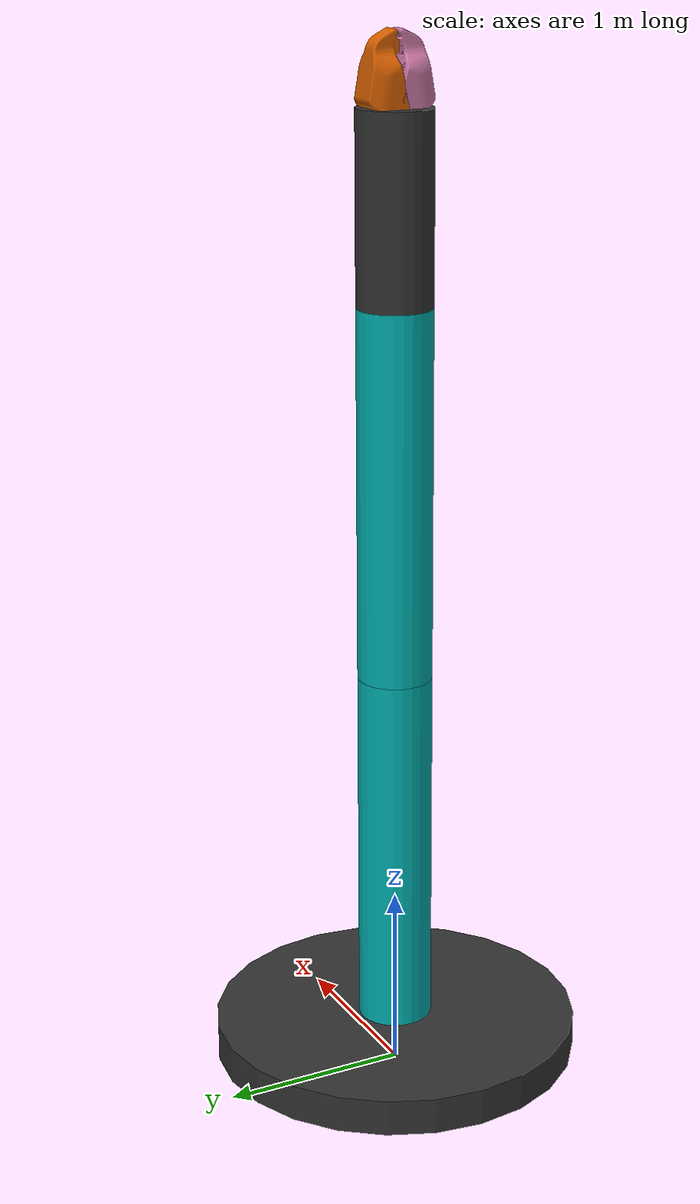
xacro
<?xml version="1.0"?>
<robot name="arm">

  <material name="dark_gray">
    <color rgba="0.2 0.2 0.2 1.0"/>
  </material>

  <material name="blue">
    <color rgba="0.0 0.7 0.7 1.0"/>
  </material>

  <link name="base_link">
    <visual>
      <geometry>
        <cylinder length="0.2" radius="0.5"/>
      </geometry>
      <material name="dark_gray"/>
    </visual>
  </link>

  <link name="bottom_arm">
    <visual>
      <geometry>
        <cylinder length="2.0" radius="0.2"/>
      </geometry>
      <material name="blue"/>
      <origin xyz="0 0 1.0"/>
    </visual>
  </link>

  <link name="bottom_rotator">
    <visual>
      <geometry>
        <cylinder length="0.2" radius="1.0"/>
      </geometry>
      <material name="dark_gray"/>
    </visual>
  </link>

  <link name="top_arm">
    <visual>
      <geometry>
        <cylinder length="2.0" radius="0.2"/>
      </geometry>
      <material name="blue"/>
      <origin xyz="0 0 1.0"/>
    </visual>
  </link>

  <link name="wrist">
    <visual>
      <geometry>
        <cylinder length="1.0" radius="0.2"/>
      </geometry>
      <material name="dark_gray"/>
      <origin xyz="0 0 0.5"/>
    </visual>
  </link>

  <link name="gripper_left">
    <visual>
      <origin rpy="0.0 -1.570796 0" xyz="0 0 0"/>
      <geometry>
        <mesh filename="package://urdf_tutorial/meshes/l_finger.dae"
        scale="4 4 4"/>
      </geometry>
    </visual>
  </link>

  <link name="gripper_right">
    <visual>
      <origin rpy="-3.14159 -1.570796 0" xyz="0 0 0"/>
      <geometry>
        <mesh filename="package://urdf_tutorial/meshes/l_finger.dae"
        scale="4 4 4"/>
      </geometry>
    </visual>
  </link>

  <joint name="base_to_bottom_rotator" type="revolute">
    <axis xyz="0.0 0.0 0.2"/>
    <limit effort="1000.0" lower="-2.0" upper="2.0" velocity="0.5"/>
    <parent link="base_link"/>
    <child link="bottom_rotator"/>
    <origin xyz="0 0 0.2"/>
  </joint>

  <joint name="bottom_rotator_to_bottom_arm" type="revolute">
    <axis xyz="-1.0 0.0 0.0"/>
    <limit effort="1000.0" lower="-2.0" upper="2.0" velocity="0.5"/>
    <parent link="bottom_rotator"/>
    <child link="bottom_arm"/>
    <origin xyz="0 0 0.1"/>
  </joint>

  <joint name="bottom_arm_to_top_arm" type="revolute">
    <axis xyz="1.0 0.0 0.0"/>
    <limit effort="1000.0" lower="-2.0" upper="2.0" velocity="0.5"/>
    <parent link="bottom_arm"/>
    <child link="top_arm"/>
    <origin xyz="0 0 2.0"/>
  </joint>

  <joint name="top_arm_to_wrist" type="revolute">
    <axis xyz="1.0 0.0 0.0"/>
    <limit effort="1000.0" lower="-2.0" upper="2.0" velocity="0.5"/>
    <parent link="top_arm"/>
    <child link="wrist"/>
    <origin xyz="0 0 2.0"/>
  </joint>

  <joint name="wrist_to_gripper_left" type="revolute">
    <axis xyz="1.0 0.0 0.0"/>
    <limit effort="1000.0" lower="-2.0" upper="2.0" velocity="0.5"/>
    <parent link="wrist"/>
    <child link="gripper_left"/>
    <origin xyz="0 0 1.0"/>
  </joint>

  <joint name="wrist_to_gripper_right" type="revolute">
    <axis xyz="1.0 0.0 0.0"/>
    <limit effort="1000.0" lower="-2.0" upper="2.0" velocity="0.5"/>
    <parent link="wrist"/>
    <child link="gripper_right"/>
    <origin xyz="0 0 1.0"/>
  </joint>

</robot>
